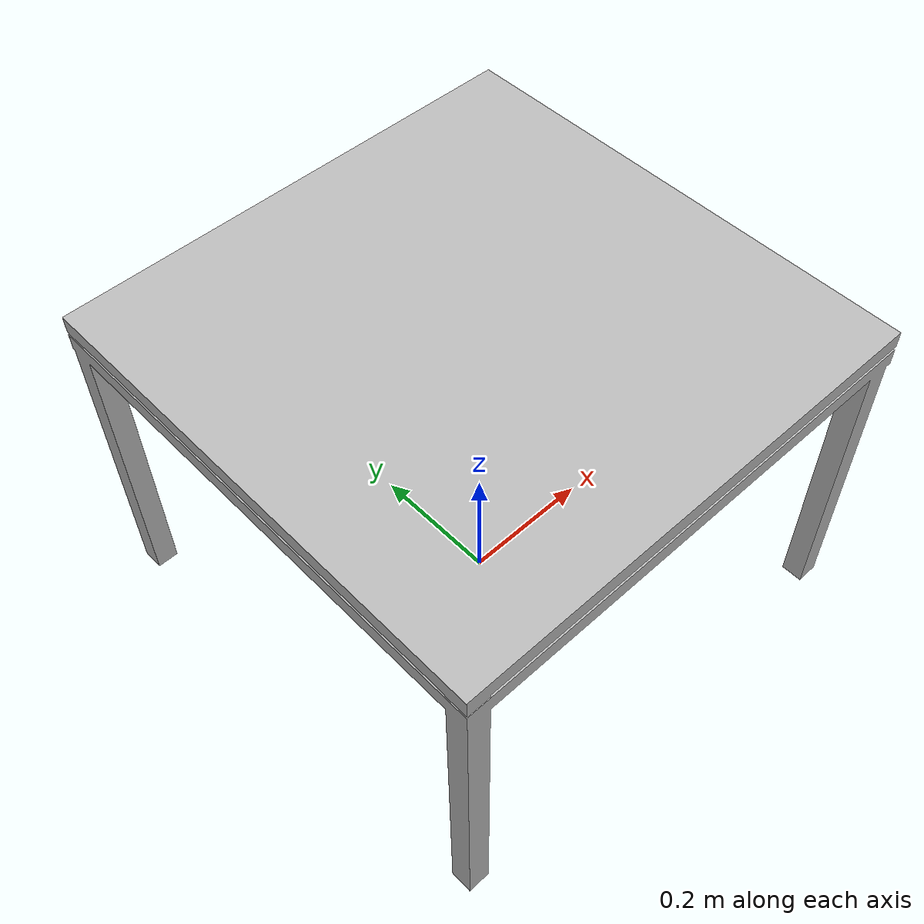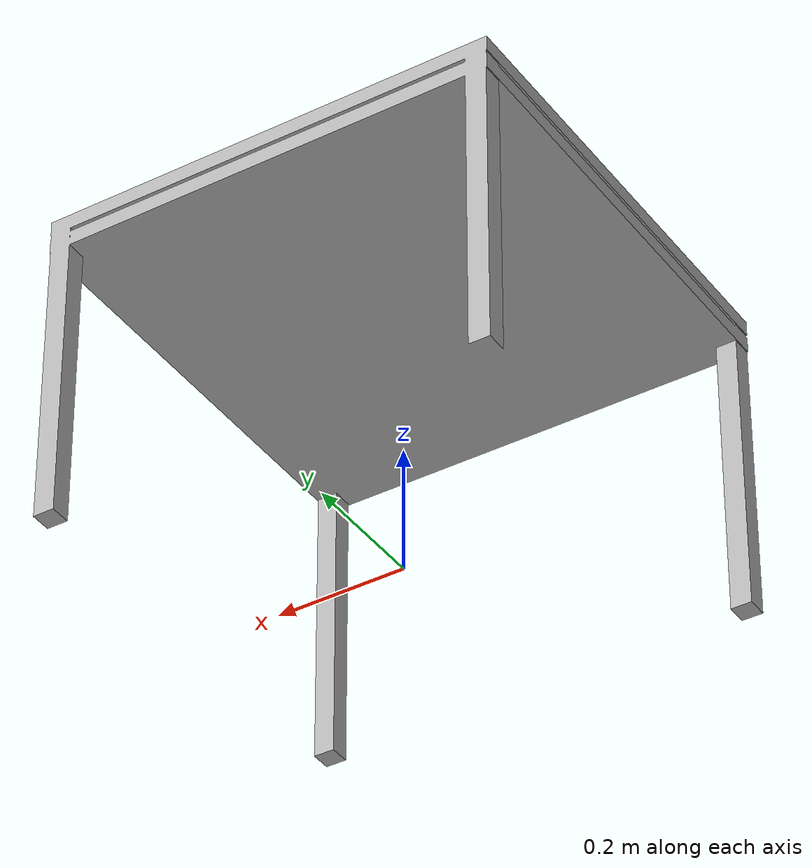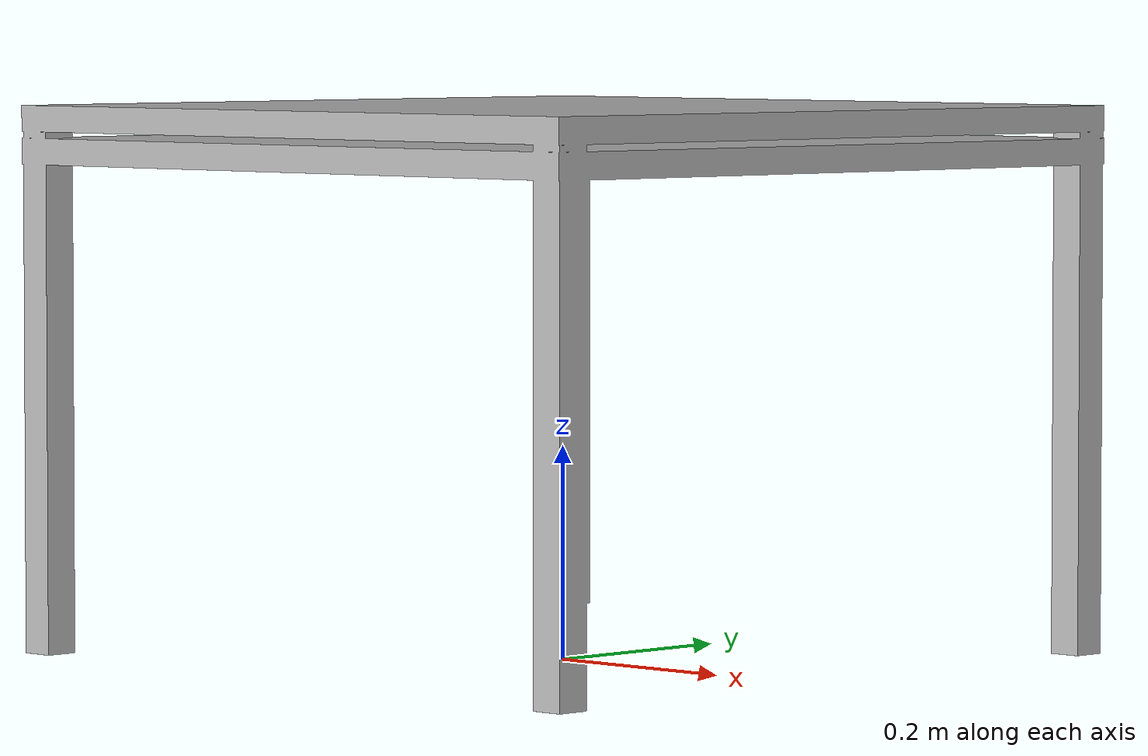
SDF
<?xml version='1.0'?>
<sdf version="1.4">
<model name="coffee table">
  <pose>0 0 0 0 0 0</pose>
  <static>true</static>
    <link name="link">
      <pose>0 0 0 0 0 0</pose>
      <inertial>
        <mass>1.0</mass>
        <inertia> <!-- interias are tricky to compute -->
          <!-- http://answers.gazebosim.org/question/4372/the-inertia-matrix-explained/ -->
          <ixx>0.083</ixx>       <!-- for a box: ixx = 0.083 * mass * (y*y + z*z) -->
          <ixy>0.0</ixy>         <!-- for a box: ixy = 0 -->
          <ixz>0.0</ixz>         <!-- for a box: ixz = 0 -->
          <iyy>0.083</iyy>       <!-- for a box: iyy = 0.083 * mass * (x*x + z*z) -->
          <iyz>0.0</iyz>         <!-- for a box: iyz = 0 -->
          <izz>0.083</izz>       <!-- for a box: izz = 0.083 * mass * (x*x + y*y) -->
        </inertia>
      </inertial>
      <collision name="collision">
	<pose>0 0 0 1.5708 0 0</pose>
        <geometry>
	  <mesh>
	    <uri>model://hri_coffeetable/meshes/coffeetable.dae</uri>
	    <scale>1 1 1</scale>
	  </mesh>
        </geometry>
      </collision>
      <visual name="visual">
	<pose>0 0 0 1.5708 0 0</pose>
        <geometry>
	  <mesh>
	    <uri>model://hri_coffeetable/meshes/coffeetable.dae</uri>
	    <scale>1 1 1</scale>
	  </mesh>
        </geometry>
      </visual>
    </link>
  </model>
</sdf>
